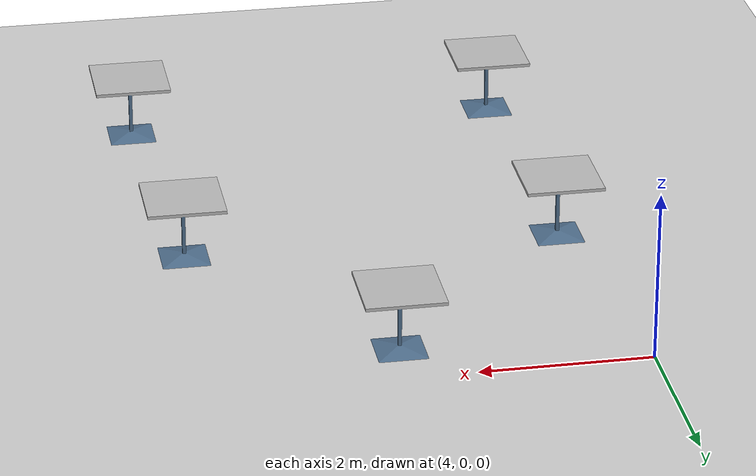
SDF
<sdf version="1.7">
 <world name="default">
  <light name="sun" type="directional">
   <pose>0 0 10 0 -0 0</pose>
   <diffuse>0.8 0.8 0.8 1</diffuse>
   <specular>0.2 0.2 0.2 1</specular>
   <attenuation>
    <range>1000</range>
    <constant>0.9</constant>
    <linear>0.01</linear>
    <quadratic>0.001</quadratic>
   </attenuation>
   <direction>0 0.5 -0.9</direction>
   <spot><inner_angle>0</inner_angle><outer_angle>0</outer_angle><falloff>0</falloff></spot>
  </light>
  <light name="point_light" type="point">
   <pose>0 -0.377195 6.59868 0 -0 0</pose>
   <diffuse>0.784314 0.784314 0.784314 1</diffuse>
   <specular>0.0980392 0.0980392 0.0980392 1</specular>
   <attenuation>
    <range>50</range>
    <constant>0.8</constant>
    <linear>0</linear>
    <quadratic>0.001</quadratic>
   </attenuation>
   <cast_shadows>0</cast_shadows>
   <direction>0 0 -1</direction>
   <spot><inner_angle>0</inner_angle><outer_angle>0</outer_angle><falloff>0</falloff></spot>
  </light>
  <model name="ground_plane">
   <static>1</static>
   <link name="link">
    <collision name="collision">
     <geometry><plane><normal>0 0 1</normal><size>100 100</size></plane></geometry>
     <surface>
      <contact><collide_bitmask>65535</collide_bitmask></contact>
      <friction><ode><mu>100</mu><mu2>50</mu2></ode></friction>
     </surface>
    </collision>
    <visual name="visual">
     <cast_shadows>0</cast_shadows>
     <geometry><plane><normal>0 0 1</normal><size>100 100</size></plane></geometry>
     <material>
      <script><uri>file://media/materials/scripts/gazebo.material</uri><name>Gazebo/Grey</name></script>
     </material>
    </visual>
   </link>
  </model>
  <model name="table1">
   <static>1</static>
   <link name="link">
    <collision name="surface">
     <pose>0 0 0.755 0 -0 0</pose>
     <geometry><box><size>0.913 0.913 0.04</size></box></geometry>
    </collision>
    <collision name="column">
     <pose>0 0 0.37 0 -0 0</pose>
     <geometry><box><size>0.042 0.042 0.74</size></box></geometry>
    </collision>
    <collision name="base">
     <pose>0 0 0.02 0 -0 0</pose>
     <geometry><box><size>0.56 0.56 0.04</size></box></geometry>
    </collision>
    <visual name="visual">
     <geometry><mesh><uri>model://cafe_table/meshes/cafe_table.dae</uri></mesh></geometry>
    </visual>
   </link>
   <pose>6.82143 -0.325206 0.2 0 -0 0</pose>
  </model>
  <model name="table2">
   <static>1</static>
   <link name="link">
    <collision name="surface">
     <pose>0 0 0.755 0 -0 0</pose>
     <geometry><box><size>0.913 0.913 0.04</size></box></geometry>
    </collision>
    <collision name="column">
     <pose>0 0 0.37 0 -0 0</pose>
     <geometry><box><size>0.042 0.042 0.74</size></box></geometry>
    </collision>
    <collision name="base">
     <pose>0 0 0.02 0 -0 0</pose>
     <geometry><box><size>0.56 0.56 0.04</size></box></geometry>
    </collision>
    <visual name="visual">
     <geometry><mesh><uri>model://cafe_table/meshes/cafe_table.dae</uri></mesh></geometry>
    </visual>
   </link>
   <pose>8.88488 -2.96251 0.2 0 -0 0</pose>
  </model>
  <model name="table3">
   <static>1</static>
   <link name="link">
    <collision name="surface">
     <pose>0 0 0.755 0 -0 0</pose>
     <geometry><box><size>0.913 0.913 0.04</size></box></geometry>
    </collision>
    <collision name="column">
     <pose>0 0 0.37 0 -0 0</pose>
     <geometry><box><size>0.042 0.042 0.74</size></box></geometry>
    </collision>
    <collision name="base">
     <pose>0 0 0.02 0 -0 0</pose>
     <geometry><box><size>0.56 0.56 0.04</size></box></geometry>
    </collision>
    <visual name="visual">
     <geometry><mesh><uri>model://cafe_table/meshes/cafe_table.dae</uri></mesh></geometry>
    </visual>
   </link>
   <pose>4.49372 -2.8029 0.2 0 -0 0</pose>
  </model>
  <model name="table4">
   <static>1</static>
   <link name="link">
    <collision name="surface">
     <pose>0 0 0.755 0 -0 0</pose>
     <geometry><box><size>0.913 0.913 0.04</size></box></geometry>
    </collision>
    <collision name="column">
     <pose>0 0 0.37 0 -0 0</pose>
     <geometry><box><size>0.042 0.042 0.74</size></box></geometry>
    </collision>
    <collision name="base">
     <pose>0 0 0.02 0 -0 0</pose>
     <geometry><box><size>0.56 0.56 0.04</size></box></geometry>
    </collision>
    <visual name="visual">
     <geometry><mesh><uri>model://cafe_table/meshes/cafe_table.dae</uri></mesh></geometry>
    </visual>
   </link>
   <pose>9.11347 -6.41079 0.2 0 -0 0</pose>
  </model>
  <model name="table5">
   <static>1</static>
   <link name="link">
    <collision name="surface">
     <pose>0 0 0.755 0 -0 0</pose>
     <geometry><box><size>0.913 0.913 0.04</size></box></geometry>
    </collision>
    <collision name="column">
     <pose>0 0 0.37 0 -0 0</pose>
     <geometry><box><size>0.042 0.042 0.74</size></box></geometry>
    </collision>
    <collision name="base">
     <pose>0 0 0.02 0 -0 0</pose>
     <geometry><box><size>0.56 0.56 0.04</size></box></geometry>
    </collision>
    <visual name="visual">
     <geometry><mesh><uri>model://cafe_table/meshes/cafe_table.dae</uri></mesh></geometry>
    </visual>
   </link>
   <pose>4.6066 -6.43042 0.2 0 -0 0</pose>
  </model>
  <gravity>0 0 -9.8</gravity>
  <magnetic_field>6e-06 2.3e-05 -4.2e-05</magnetic_field>
  <atmosphere type="adiabatic"/>
  <physics type="ode">
   <max_step_size>0.001</max_step_size>
   <real_time_factor>1</real_time_factor>
   <real_time_update_rate>1000</real_time_update_rate>
  </physics>
  <scene><ambient>0.4 0.4 0.4 1</ambient><background>0.7 0.7 0.7 1</background><shadows>1</shadows></scene>
  <audio><device>default</device></audio>
  <spherical_coordinates>
   <surface_model>EARTH_WGS84</surface_model>
   <latitude_deg>0</latitude_deg>
   <longitude_deg>0</longitude_deg>
   <elevation>0</elevation>
   <heading_deg>0</heading_deg>
  </spherical_coordinates>
 </world>
</sdf>
